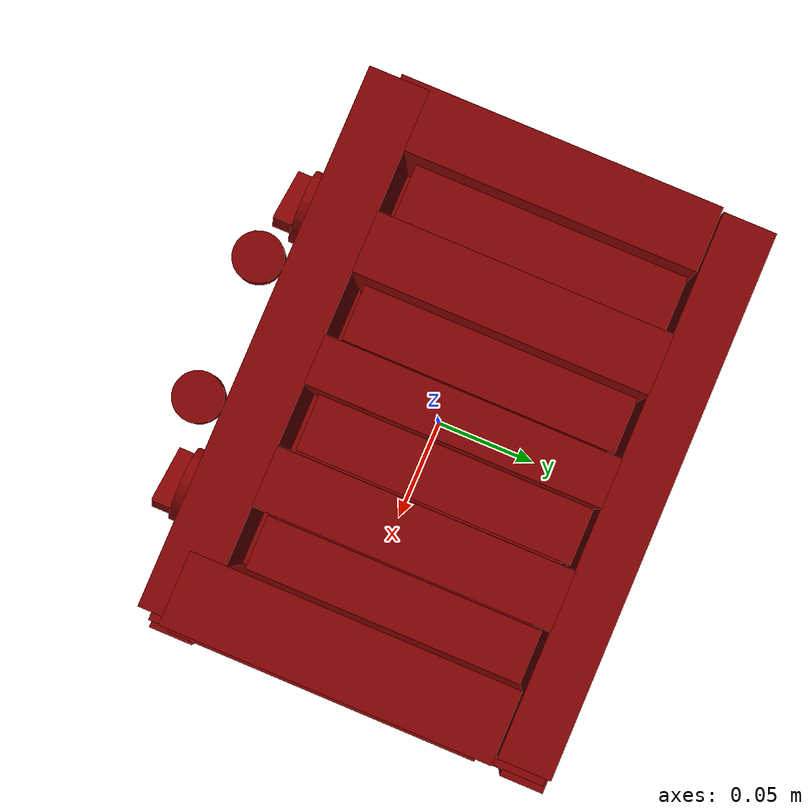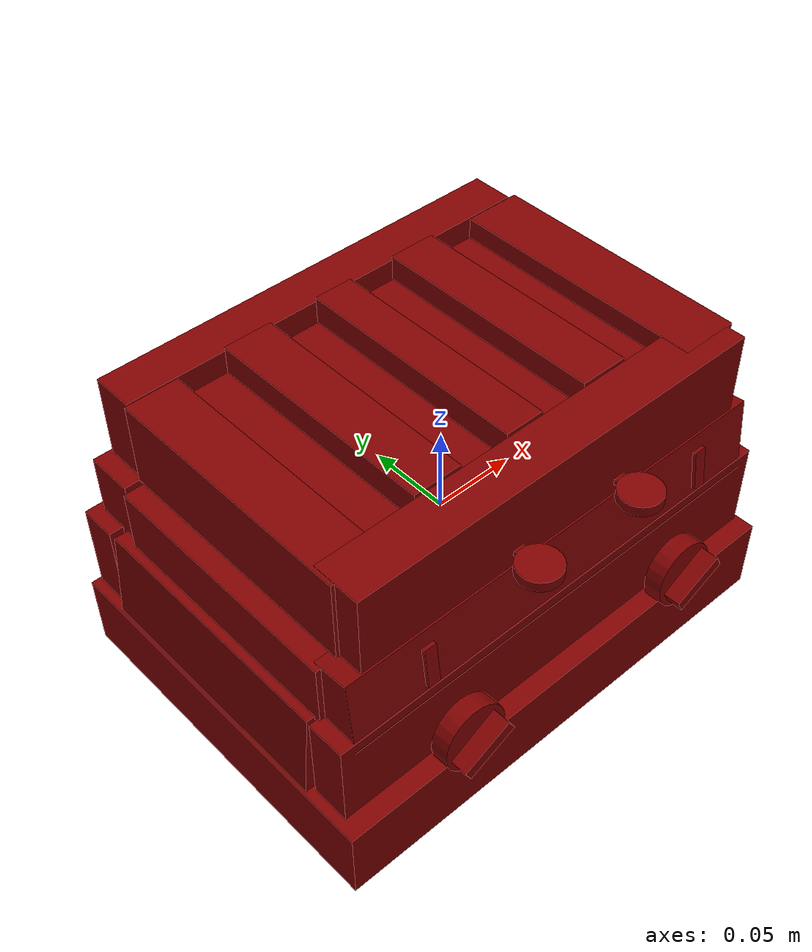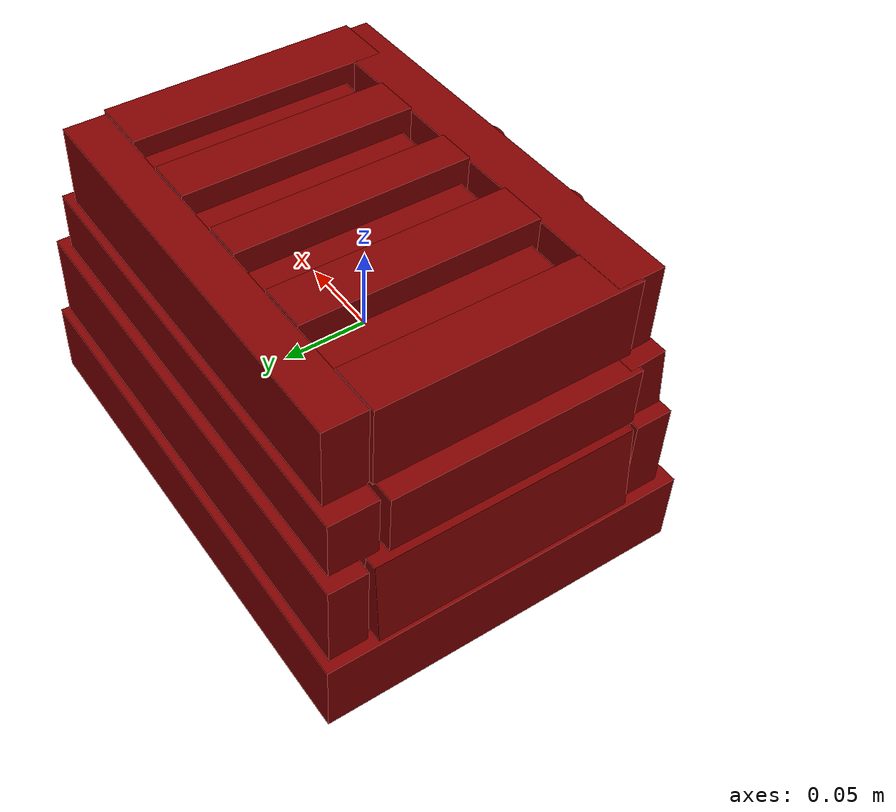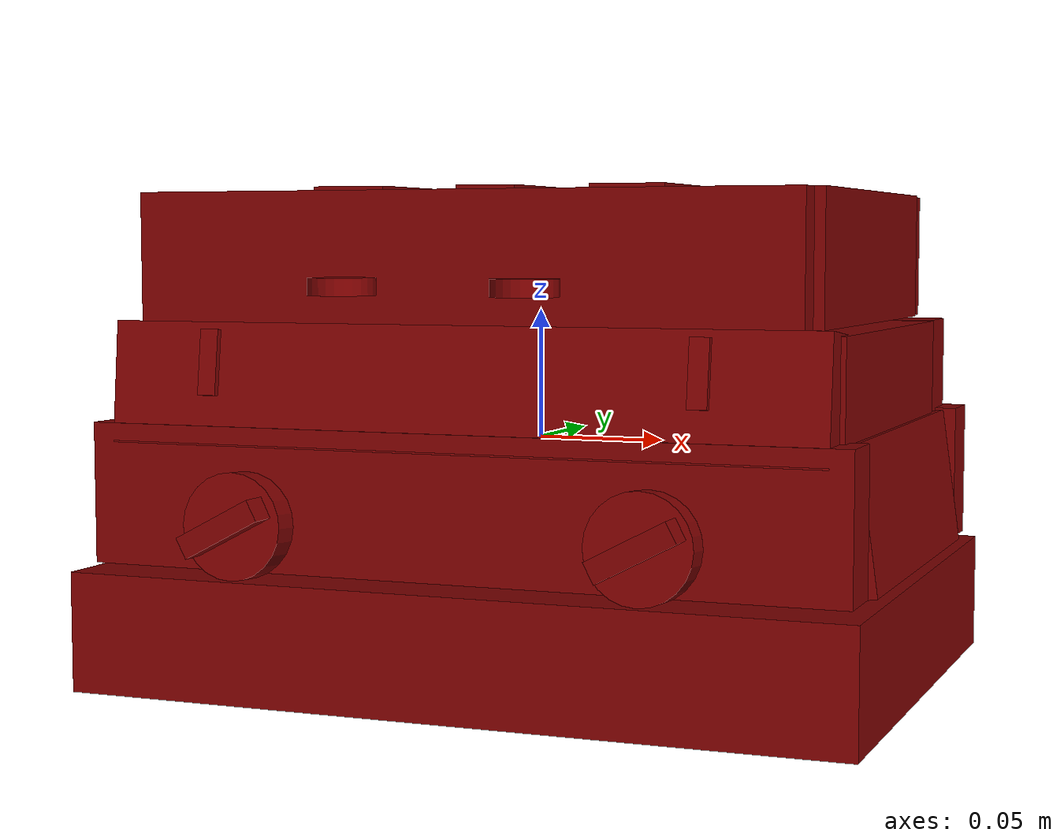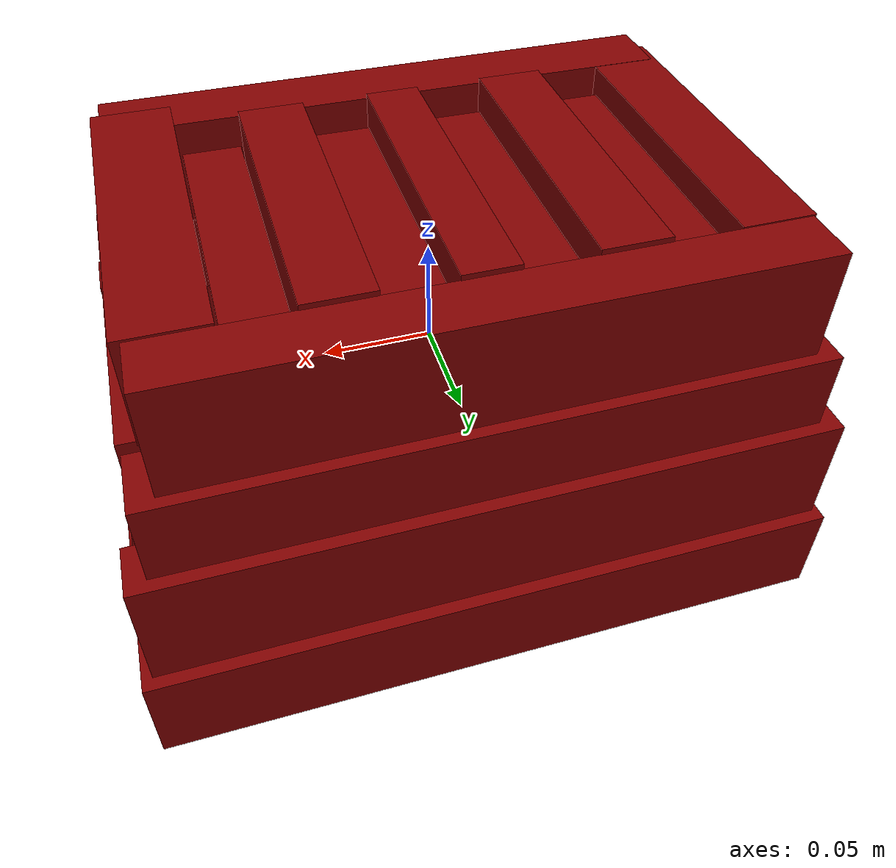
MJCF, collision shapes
<?xml version='1.0' encoding='UTF-8'?>
<mujoco model="model">
  <compiler angle="radian"/>
  <asset>
    <mesh file="visuals/Body001.obj" name="Body001_vis"/>
    <mesh file="visuals/Button001.obj" name="Button001_vis"/>
    <mesh file="visuals/Button002.obj" name="Button002_vis"/>
    <mesh file="visuals/Knob001.obj" name="Knob001_vis"/>
    <mesh file="visuals/Knob002.obj" name="Knob002_vis"/>
    <mesh file="visuals/Lever001.obj" name="Lever001_vis"/>
    <mesh file="visuals/Lever002.obj" name="Lever002_vis"/>
    <texture file="visuals/T_BC001.png" name="Body001_material" type="2d"/>
    <material name="Body001_material" rgba="1 1 1 1.0" texture="Body001_material" shininess="0.5" specular="1"/>
    <texture file="visuals/T_BC001.png" name="Button001_material" type="2d"/>
    <material name="Button001_material" rgba="1 1 1 1.0" texture="Button001_material" shininess="0.5" specular="1"/>
    <texture file="visuals/T_BC001.png" name="Button002_material" type="2d"/>
    <material name="Button002_material" rgba="1 1 1 1.0" texture="Button002_material" shininess="0.5" specular="1"/>
    <texture file="visuals/T_BC001.png" name="Knob001_material" type="2d"/>
    <material name="Knob001_material" rgba="1 1 1 1.0" texture="Knob001_material" shininess="0.5" specular="0.8"/>
    <texture file="visuals/T_BC001.png" name="Knob002_material" type="2d"/>
    <material name="Knob002_material" rgba="1 1 1 1.0" texture="Knob002_material" shininess="0.5" specular="0.8"/>
    <texture file="visuals/T_BC001.png" name="Lever001_material" type="2d"/>
    <material name="Lever001_material" rgba="1 1 1 1.0" texture="Lever001_material" shininess="0.5" specular="1"/>
    <texture file="visuals/T_BC001.png" name="Lever002_material" type="2d"/>
    <material name="Lever002_material" rgba="1 1 1 1.0" texture="Lever002_material" shininess="0.5" specular="1"/>
  </asset>
  <default>
    <default class="visual">
      <geom conaffinity="0" contype="0" group="1" type="mesh"/>
    </default>
    <default class="collision">
      <geom group="0" rgba="0.5 0 0 0.5"/>
    </default>
    <default class="spawn">
      <geom group="0" rgba="1 1 1 0.5" contype="0" conaffinity="0"/>
      <site group="0" rgba="1 1 1 0.5"/>
    </default>
    <default class="region">
      <geom group="1" conaffinity="0" contype="0" rgba="0 1 0 0"/>
    </default>
  </default>
  <worldbody>
    <body>
      <body name="object">
        <geom mesh="Body001_vis" type="mesh" solimp="0.998 0.998 0.001" solref="0.001 1" density="100" friction="0.95 0.3 0.1" class="visual" material="Body001_material"/>
        <geom class="collision" type="box" pos="0.000000 0.009406 -0.070778" size="0.15093529224395752 0.1104334369301796 0.022948309779167175" quat="1.0 0.0 0.0 0.0"/>
        <geom class="collision" type="box" pos="0.000000 0.096383 0.021736" size="0.13765887916088104 0.014076164923608303 0.022948309779167175" quat="1.0 0.0 0.0 0.0"/>
        <geom class="collision" type="box" pos="-0.000136 0.094315 0.070457" size="0.12757332623004913 0.012452364899218082 0.02426888793706894" quat="1.0 0.0 0.0 0.0"/>
        <geom class="collision" type="box" pos="0.000000 -0.070952 0.070457" size="0.1274377852678299 0.014194607734680176 0.02426888793706894" quat="1.0 0.0 0.0 0.0"/>
        <geom class="collision" type="box" pos="-0.125774 0.004446 0.021736" size="0.014984704554080963 0.07420015335083008 0.022948473691940308" quat="1.0 0.0 0.0 0.0"/>
        <geom class="collision" type="box" pos="-0.114118 0.005205 0.070342" size="0.015380119904875755 0.07584980875253677 0.02426857501268387" quat="1.0 0.0 0.0 0.0"/>
        <geom class="collision" type="box" pos="0.123002 0.000271 0.021736" size="0.016548022627830505 0.07668677717447281 0.022947801277041435" quat="1.0 0.0 0.0 0.0"/>
        <geom class="collision" type="box" pos="0.114118 0.003566 0.070589" size="0.017177307978272438 0.07729019224643707 0.02426888793706894" quat="1.0 0.0 0.0 0.0"/>
        <geom class="collision" type="box" pos="-0.055181 0.012706 0.059740" size="0.014374571852385998 0.06940566748380661 0.03724751994013786" quat="1.0 0.0 0.0 0.0"/>
        <geom class="collision" type="box" pos="0.000345 0.012706 0.059740" size="0.011652554385364056 0.06940566003322601 0.037247590720653534" quat="1.0 0.0 0.0 0.0"/>
        <geom class="collision" type="box" pos="0.054973 0.012706 0.059740" size="0.014171146787703037 0.06940466165542603 0.037247978150844574" quat="1.0 0.0 0.0 0.0"/>
        <geom class="collision" type="box" pos="0.000000 -0.077261 0.022868" size="0.13765887916088104 0.011381338350474834 0.022948311641812325" quat="0.9988005757331848 -0.048963017761707306 1.0871969798932527e-17 -1.478460231598969e-24"/>
        <geom class="collision" type="box" pos="0.000000 0.104725 -0.018456" size="0.14615358412265778 0.011247183196246624 0.02679312415421009" quat="1.0 0.0 0.0 0.0"/>
        <geom class="collision" type="box" pos="0.000000 -0.079526 -0.018456" size="0.14615358412265778 0.011247177608311176 0.02679312415421009" quat="1.0 0.0 0.0 0.0"/>
        <geom class="collision" type="box" pos="-0.132920 0.011943 -0.019811" size="0.015164616517722607 0.07797303795814514 0.02679312415421009" quat="0.9989761710166931 -4.416790305382097e-16 0.04523940756917 -1.5484783455477213e-09"/>
        <geom class="collision" type="box" pos="0.130393 0.011943 -0.020669" size="0.015164618380367756 0.07797303795814514 0.02679312601685524" quat="0.9976035952568054 -2.6082881421170723e-16 -0.06918864697217941 2.3682258376567233e-09"/>
        <body name="Button001">
          <joint axis="0.0 1.0 0.0" pos="0.000000 0.009404 -0.095129" limited="true" name="Button001_joint" range="0.0 0.001" type="slide" damping="1" frictionloss="1" armature=".01" stiffness="0.05"/>
          <geom mesh="Button001_vis" type="mesh" solimp="0.998 0.998 0.001" solref="0.001 1" density="100" friction="0.95 0.3 0.1" class="visual" material="Button001_material"/>
          <geom class="collision" type="box" pos="0.093742 -0.094121 0.032232" size="0.003607057500630617 0.0011718232417479157 0.01218100730329752" quat="0.9980376362800598 -0.0626167431473732 1.3903713302573094e-17 -2.9686382030840907e-24"/>
        </body>
        <body name="Button002">
          <joint axis="0.0 1.0 0.0" pos="-0.093661 -0.091630 0.031580" limited="true" name="Button002_joint" range="0.0 0.001" type="slide" damping="1" frictionloss="1" armature=".01" stiffness="0.05"/>
          <geom mesh="Button002_vis" type="mesh" solimp="0.998 0.998 0.001" solref="0.001 1" density="100" friction="0.95 0.3 0.1" class="visual" material="Button002_material"/>
          <geom class="collision" type="box" pos="-0.093742 -0.094121 0.032232" size="0.003607057500630617 0.0011718232417479157 0.01218100730329752" quat="0.9980376362800598 -0.0626167431473732 1.3903713302573094e-17 -2.9686382030840907e-24"/>
        </body>
        <body name="Knob001">
          <joint axis="-2.0563602447509766e-06 0.997897207736969 -0.06481683254241943" pos="0.077370 -0.105368 -0.026306" limited="true" name="Knob001_joint" range="0.0 4.276056667386108" type="hinge" damping="0.05" armature="0.001"/>
          <geom mesh="Knob001_vis" type="mesh" solimp="0.998 0.998 0.001" solref="0.001 1" density="100" friction="0.95 0.3 0.1" class="visual" material="Knob001_material"/>
          <geom class="collision" type="cylinder" pos="0.077155 -0.103149 -0.026353" size="0.01965203881263733 0.005387690383940935" quat="0.7274610996246338 0.6861489415168762 -1.523556706388432e-16 5.119599595370804e-24"/>
          <geom class="collision" type="box" pos="0.077751 -0.113198 -0.025882" size="0.016234053298830986 0.0054860045202076435 0.004217417910695076" quat="0.9710913300514221 2.9724225768835717e-16 -0.23870821297168732 8.170633947202077e-09"/>
        </body>
        <body name="Knob002">
          <joint axis="-6.258487701416016e-07 0.997896671295166 -0.06482385098934174" pos="-0.077370 -0.105971 -0.026267" limited="true" name="Knob002_joint" range="0.0 4.276056667386108" type="hinge" damping="0.05" armature="0.001"/>
          <geom mesh="Knob002_vis" type="mesh" solimp="0.998 0.998 0.001" solref="0.001 1" density="100" friction="0.95 0.3 0.1" class="visual" material="Knob002_material"/>
          <geom class="collision" type="cylinder" pos="-0.077370 -0.103149 -0.026353" size="0.01965203881263733 0.005387690383940935" quat="0.7274610996246338 0.6861489415168762 -1.523556706388432e-16 5.119599595370804e-24"/>
          <geom class="collision" type="box" pos="-0.077629 -0.113198 -0.025882" size="0.016234053298830986 0.0054860045202076435 0.004217417910695076" quat="0.9710913300514221 2.9724225768835717e-16 -0.23870821297168732 8.170633947202077e-09"/>
        </body>
        <body name="Lever001">
          <joint axis="-2.6346708361438796e-17 -0.11865502595901489 -0.9929355978965759" pos="-0.034296 -0.096556 0.060077" limited="true" name="Lever001_joint" range="0.0 0.09" type="slide" damping="1" frictionloss="1" armature=".01" stiffness="2" springref="-0.5"/>
          <geom mesh="Lever001_vis" type="mesh" solimp="0.998 0.998 0.001" solref="0.001 1" density="100" friction="0.95 0.3 0.1" class="visual" material="Lever001_material"/>
          <geom class="collision" type="box" pos="-0.084241 0.014265 0.081939" size="0.013065146282315254 0.06495773792266846 0.0016200206009671092" quat="1.0 0.0 0.0 0.0" name="sideL_slotL_floor"/>
          <geom class="collision" type="box" pos="-0.026127 0.014265 0.081939" size="0.013133001513779163 0.06495887786149979 0.0016200300306081772" quat="1.0 0.0 0.0 0.0" name="sideL_slotR_floor"/>
          <geom class="collision" type="cylinder" pos="-0.034612 -0.102805 0.060521" size="0.012125927023589611 0.0031209716107696295" quat="1.0 0.0 0.0 0.0" name="sideL_lever_knob"/>
          <geom class="collision" type="box" pos="-0.034033 -0.089585 0.060340" size="0.002806791104376316 0.0012262033997103572 0.0019485227530822158" quat="1.0 0.0 0.0 0.0"/>
        </body>
        <body name="Lever002">
          <joint axis="-2.6346708361438796e-17 -0.11865502595901489 -0.9929355978965759" pos="0.034612 -0.096556 0.060077" limited="true" name="Lever002_joint" range="0.0 0.09" type="slide" damping="1" frictionloss="1" armature=".01" stiffness="2" springref="-0.5"/>
          <geom mesh="Lever002_vis" type="mesh" solimp="0.998 0.998 0.001" solref="0.001 1" density="100" friction="0.95 0.3 0.1" class="visual" material="Lever002_material"/>
          <geom class="collision" type="box" pos="0.026344 0.014850 0.082217" size="0.013275036588311195 0.06514284014701843 0.001620028866454959" quat="1.0 0.0 0.0 0.0" name="sideR_slotL_floor"/>
          <geom class="collision" type="box" pos="0.083148 0.014620 0.082217" size="0.012585297226905823 0.06489637494087219 0.0016200239770114422" quat="1.0 0.0 0.0 0.0" name="sideR_slotR_floor"/>
          <geom class="collision" type="cylinder" pos="0.034577 -0.102805 0.060521" size="0.012125923298299313 0.0031209716107696295" quat="1.0 0.0 1.5407439555097887e-33 0.0" name="sideR_lever_knob"/>
          <geom class="collision" type="box" pos="0.034635 -0.089585 0.060340" size="0.002806797856464982 0.001226204913109541 0.0019485274096950889" quat="1.0 0.0 0.0 0.0"/>
        </body>
        <geom class="region" name="reg_main" type="box" pos="0.0 0.009404999999999997 0.0" size="0.15105 0.109775 0.095093"/>
      </body>
    </body>
  </worldbody>
  <actuator>
    <motor name="Button001_joint_actuator" joint="Button001_joint" gear="0.5"/>
    <motor name="Button002_joint_actuator" joint="Button002_joint" gear="0.5"/>
    <motor name="Knob001_joint_actuator" joint="Knob001_joint" gear="10"/>
    <motor name="Knob002_joint_actuator" joint="Knob002_joint" gear="10"/>
    <motor name="Lever001_joint_actuator" joint="Lever001_joint" gear="50"/>
    <motor name="Lever002_joint_actuator" joint="Lever002_joint" gear="50"/>
  </actuator>
</mujoco>
